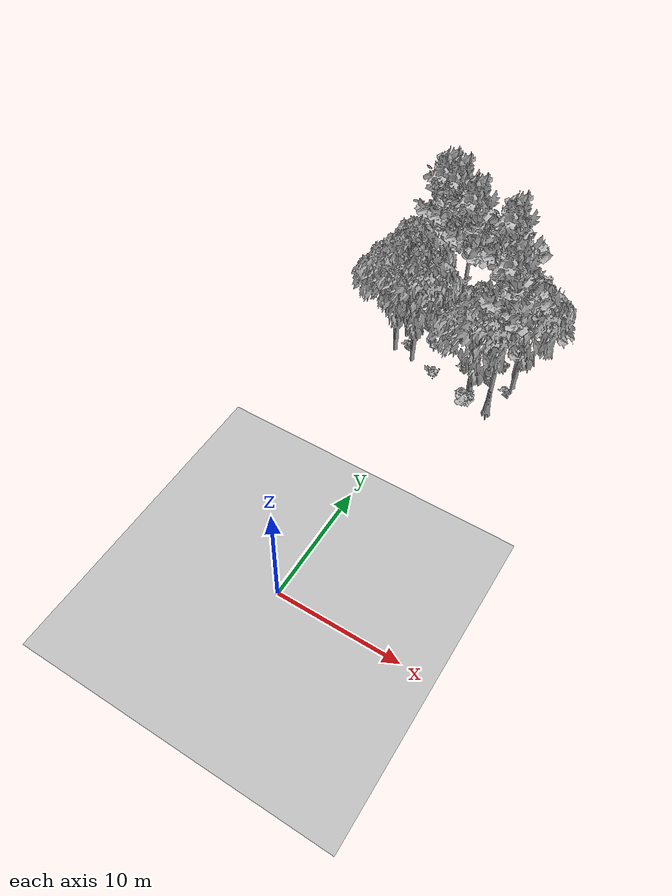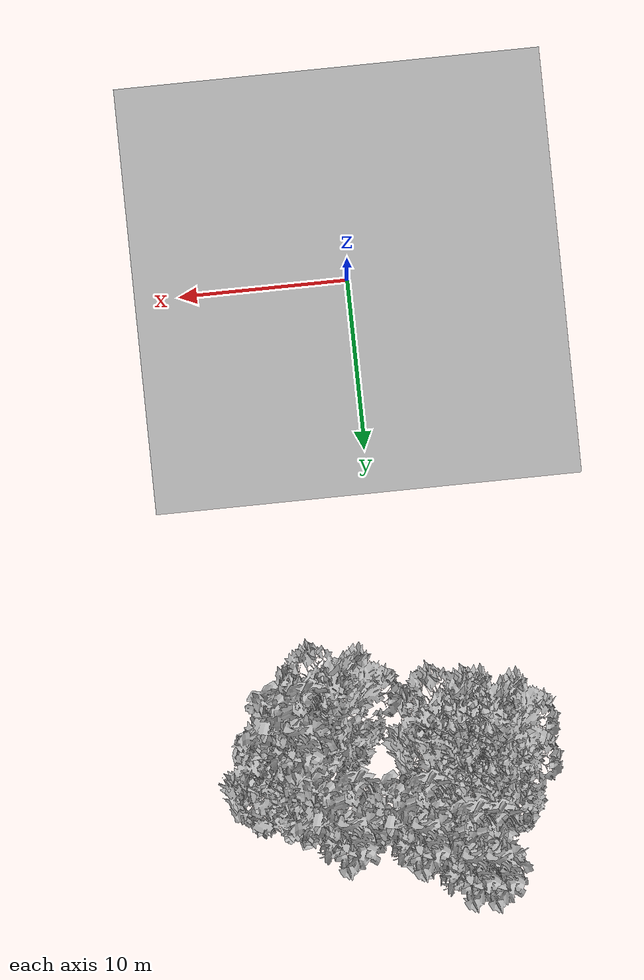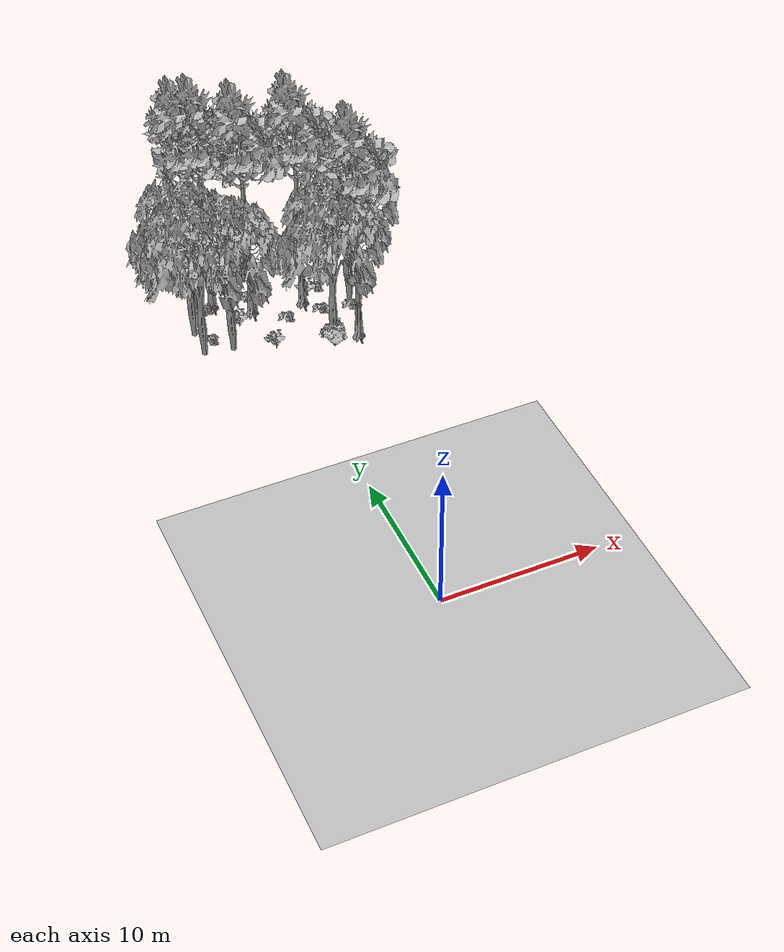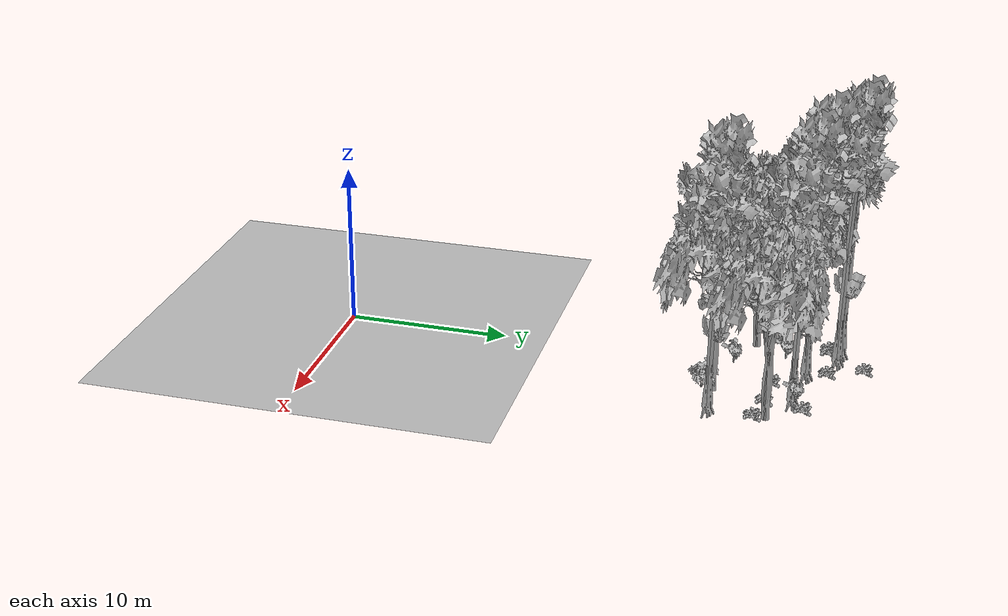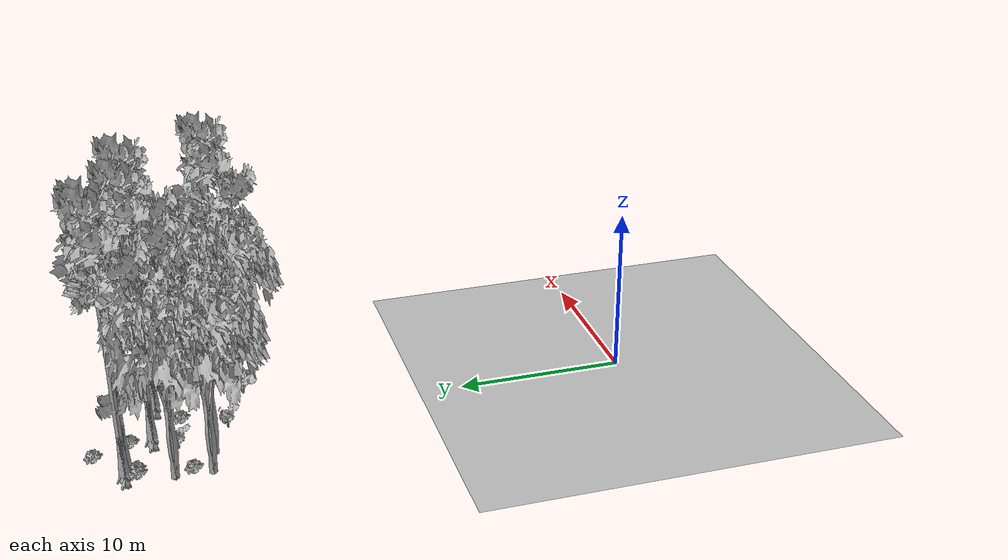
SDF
<sdf version="1.7">
 <world name="default">
  <model name="ground_plane">
   <static>1</static>
   <link name="link">
    <collision name="collision">
     <pose>-50 0 0 0 -0 0</pose>
     <geometry><plane><normal>0 0 1</normal><size>80 80</size></plane></geometry>
     <surface><contact><ode><min_depth>0.01</min_depth><max_vel>0</max_vel></ode></contact></surface>
    </collision>
    <visual name="grass">
     <cast_shadows>0</cast_shadows>
     <geometry>
      <mesh>
       <scale>0.46714285714285714 0.46714285714285714 0.1</scale>
       <uri>file://grass_plane/meshes/grass_plane.dae</uri>
      </mesh>
     </geometry>
    </visual>
   </link>
  </model>
  <model name="Tree 57">
   <static>1</static>
   <pose>-4.908100950834054 25.46079743797337 0 1.57079 -0 0</pose>
   <link name="link">
    <collision name="collision">
     <geometry><mesh><scale>3.5 5 3.5</scale><uri>model://tree_2/meshes/tree_2.obj</uri></mesh></geometry>
    </collision>
    <visual name="visual">
     <geometry><mesh><scale>3.5 5 3.5</scale><uri>model://tree_2/meshes/tree_2.obj</uri></mesh></geometry>
    </visual>
   </link>
  </model>
  <model name="Tree 92">
   <static>1</static>
   <pose>-0.4430177543465845 28.405662768019283 0 1.57079 -0 0</pose>
   <link name="link">
    <collision name="collision">
     <geometry><mesh><scale>3.5 5 3.5</scale><uri>model://tree_9/meshes/tree_9.obj</uri></mesh></geometry>
    </collision>
    <visual name="visual">
     <geometry><mesh><scale>3.5 5 3.5</scale><uri>model://tree_9/meshes/tree_9.obj</uri></mesh></geometry>
    </visual>
   </link>
  </model>
  <model name="Tree 145">
   <static>1</static>
   <pose>5.7937834110559905 26.746695775694064 0 1.57079 -0 0</pose>
   <link name="link">
    <collision name="collision">
     <geometry><mesh><scale>3.5 5 3.5</scale><uri>model://tree_2/meshes/tree_2.obj</uri></mesh></geometry>
    </collision>
    <visual name="visual">
     <geometry><mesh><scale>3.5 5 3.5</scale><uri>model://tree_2/meshes/tree_2.obj</uri></mesh></geometry>
    </visual>
   </link>
  </model>
  <model name="Tree 176">
   <static>1</static>
   <pose>-4.86404579534689 27.507435658707465 0 1.57079 -0 0</pose>
   <link name="link">
    <collision name="collision">
     <geometry><mesh><scale>3.5 5 3.5</scale><uri>model://tree_2/meshes/tree_2.obj</uri></mesh></geometry>
    </collision>
    <visual name="visual">
     <geometry><mesh><scale>3.5 5 3.5</scale><uri>model://tree_2/meshes/tree_2.obj</uri></mesh></geometry>
    </visual>
   </link>
  </model>
  <model name="Tree 186">
   <static>1</static>
   <pose>5.08888139584932 23.369019391815584 0 1.57079 -0 0</pose>
   <link name="link">
    <collision name="collision">
     <geometry><mesh><scale>3.5 5 3.5</scale><uri>model://tree_9/meshes/tree_9.obj</uri></mesh></geometry>
    </collision>
    <visual name="visual">
     <geometry><mesh><scale>3.5 5 3.5</scale><uri>model://tree_9/meshes/tree_9.obj</uri></mesh></geometry>
    </visual>
   </link>
  </model>
  <model name="Tree 317">
   <static>1</static>
   <pose>-2.6479319636963936 30.040150583746325 0 1.57079 -0 0</pose>
   <link name="link">
    <collision name="collision">
     <geometry><mesh><scale>3.5 5 3.5</scale><uri>model://tree_9/meshes/tree_9.obj</uri></mesh></geometry>
    </collision>
    <visual name="visual">
     <geometry><mesh><scale>3.5 5 3.5</scale><uri>model://tree_9/meshes/tree_9.obj</uri></mesh></geometry>
    </visual>
   </link>
  </model>
  <model name="Tree 341">
   <static>1</static>
   <pose>-3.736876223873864 30.19248484098412 0 1.57079 -0 0</pose>
   <link name="link">
    <collision name="collision">
     <geometry><mesh><scale>3.5 5 3.5</scale><uri>model://tree_9/meshes/tree_9.obj</uri></mesh></geometry>
    </collision>
    <visual name="visual">
     <geometry><mesh><scale>3.5 5 3.5</scale><uri>model://tree_9/meshes/tree_9.obj</uri></mesh></geometry>
    </visual>
   </link>
  </model>
  <model name="Tree 423">
   <static>1</static>
   <pose>2.992060708075357 27.966542448006024 0 1.57079 -0 0</pose>
   <link name="link">
    <collision name="collision">
     <geometry><mesh><scale>3.5 5 3.5</scale><uri>model://tree_9/meshes/tree_9.obj</uri></mesh></geometry>
    </collision>
    <visual name="visual">
     <geometry><mesh><scale>3.5 5 3.5</scale><uri>model://tree_9/meshes/tree_9.obj</uri></mesh></geometry>
    </visual>
   </link>
  </model>
  <model name="Tree 562">
   <static>1</static>
   <pose>-3.0476662446718876 25.131887690871366 0 1.57079 -0 0</pose>
   <link name="link">
    <collision name="collision">
     <geometry><mesh><scale>3.5 5 3.5</scale><uri>model://tree_2/meshes/tree_2.obj</uri></mesh></geometry>
    </collision>
    <visual name="visual">
     <geometry><mesh><scale>3.5 5 3.5</scale><uri>model://tree_2/meshes/tree_2.obj</uri></mesh></geometry>
    </visual>
   </link>
  </model>
  <model name="Tree 575">
   <static>1</static>
   <pose>3.2455177439090406 23.339802989098587 0 1.57079 -0 0</pose>
   <link name="link">
    <collision name="collision">
     <geometry><mesh><scale>3.5 5 3.5</scale><uri>model://tree_2/meshes/tree_2.obj</uri></mesh></geometry>
    </collision>
    <visual name="visual">
     <geometry><mesh><scale>3.5 5 3.5</scale><uri>model://tree_2/meshes/tree_2.obj</uri></mesh></geometry>
    </visual>
   </link>
  </model>
  <model name="Bush 124">
   <static>1</static>
   <pose>1.2823105183704584 26.571873525794928 0 1.57079 -0 0</pose>
   <link name="link">
    <collision name="collision">
     <geometry><mesh><scale>2 2 2</scale><uri>model://bush_2/meshes/bush_2.obj</uri></mesh></geometry>
     <surface><contact><collide_without_contact>false</collide_without_contact></contact></surface>
    </collision>
    <visual name="visual">
     <geometry><mesh><scale>2 2 2</scale><uri>model://bush_2/meshes/bush_2.obj</uri></mesh></geometry>
    </visual>
   </link>
  </model>
  <model name="Bush 128">
   <static>1</static>
   <pose>3.654021927108147 26.43761721664957 0 1.57079 -0 0</pose>
   <link name="link">
    <collision name="collision">
     <geometry><mesh><scale>2 2 2</scale><uri>model://bush_2/meshes/bush_2.obj</uri></mesh></geometry>
     <surface><contact><collide_without_contact>false</collide_without_contact></contact></surface>
    </collision>
    <visual name="visual">
     <geometry><mesh><scale>2 2 2</scale><uri>model://bush_2/meshes/bush_2.obj</uri></mesh></geometry>
    </visual>
   </link>
  </model>
  <model name="Bush 131">
   <static>1</static>
   <pose>4.165887860676904 28.685420192674215 0 1.57079 -0 0</pose>
   <link name="link">
    <collision name="collision">
     <geometry><mesh><scale>2 2 2</scale><uri>model://bush_2/meshes/bush_2.obj</uri></mesh></geometry>
     <surface><contact><collide_without_contact>false</collide_without_contact></contact></surface>
    </collision>
    <visual name="visual">
     <geometry><mesh><scale>2 2 2</scale><uri>model://bush_2/meshes/bush_2.obj</uri></mesh></geometry>
    </visual>
   </link>
  </model>
  <model name="Bush 141">
   <static>1</static>
   <pose>-0.4040906236204549 24.10848921184305 0 1.57079 -0 0</pose>
   <link name="link">
    <collision name="collision">
     <geometry><mesh><scale>2 2 2</scale><uri>model://bush_0/meshes/bush_0.obj</uri></mesh></geometry>
     <surface><contact><collide_without_contact>false</collide_without_contact></contact></surface>
    </collision>
    <visual name="visual">
     <geometry><mesh><scale>2 2 2</scale><uri>model://bush_0/meshes/bush_0.obj</uri></mesh></geometry>
    </visual>
   </link>
  </model>
  <model name="Bush 204">
   <static>1</static>
   <pose>-1.8155742516353754 27.067687083146907 0 1.57079 -0 0</pose>
   <link name="link">
    <collision name="collision">
     <geometry><mesh><scale>2 2 2</scale><uri>model://bush_0/meshes/bush_0.obj</uri></mesh></geometry>
     <surface><contact><collide_without_contact>false</collide_without_contact></contact></surface>
    </collision>
    <visual name="visual">
     <geometry><mesh><scale>2 2 2</scale><uri>model://bush_0/meshes/bush_0.obj</uri></mesh></geometry>
    </visual>
   </link>
  </model>
  <model name="Bush 205">
   <static>1</static>
   <pose>-4.086200617863113 26.44328012496291 0 1.57079 -0 0</pose>
   <link name="link">
    <collision name="collision">
     <geometry><mesh><scale>2 2 2</scale><uri>model://bush_2/meshes/bush_2.obj</uri></mesh></geometry>
     <surface><contact><collide_without_contact>false</collide_without_contact></contact></surface>
    </collision>
    <visual name="visual">
     <geometry><mesh><scale>2 2 2</scale><uri>model://bush_2/meshes/bush_2.obj</uri></mesh></geometry>
    </visual>
   </link>
  </model>
  <model name="Bush 222">
   <static>1</static>
   <pose>-3.3440389191348956 29.483262971144867 0 1.57079 -0 0</pose>
   <link name="link">
    <collision name="collision">
     <geometry><mesh><scale>2 2 2</scale><uri>model://bush_2/meshes/bush_2.obj</uri></mesh></geometry>
     <surface><contact><collide_without_contact>false</collide_without_contact></contact></surface>
    </collision>
    <visual name="visual">
     <geometry><mesh><scale>2 2 2</scale><uri>model://bush_2/meshes/bush_2.obj</uri></mesh></geometry>
    </visual>
   </link>
  </model>
  <model name="Bush 270">
   <static>1</static>
   <pose>3.4141684214483377 28.185600558983623 0 1.57079 -0 0</pose>
   <link name="link">
    <collision name="collision">
     <geometry><mesh><scale>2 2 2</scale><uri>model://bush_0/meshes/bush_0.obj</uri></mesh></geometry>
     <surface><contact><collide_without_contact>false</collide_without_contact></contact></surface>
    </collision>
    <visual name="visual">
     <geometry><mesh><scale>2 2 2</scale><uri>model://bush_0/meshes/bush_0.obj</uri></mesh></geometry>
    </visual>
   </link>
  </model>
  <model name="Bush 383">
   <static>1</static>
   <pose>3.127169665730669 22.708985592057537 0 1.57079 -0 0</pose>
   <link name="link">
    <collision name="collision">
     <geometry><mesh><scale>2 2 2</scale><uri>model://bush_1/meshes/bush_1.obj</uri></mesh></geometry>
     <surface><contact><collide_without_contact>false</collide_without_contact></contact></surface>
    </collision>
    <visual name="visual">
     <geometry><mesh><scale>2 2 2</scale><uri>model://bush_1/meshes/bush_1.obj</uri></mesh></geometry>
    </visual>
   </link>
  </model>
  <model name="Bush 415">
   <static>1</static>
   <pose>-3.774915587186854 29.46549151782351 0 1.57079 -0 0</pose>
   <link name="link">
    <collision name="collision">
     <geometry><mesh><scale>2 2 2</scale><uri>model://bush_2/meshes/bush_2.obj</uri></mesh></geometry>
     <surface><contact><collide_without_contact>false</collide_without_contact></contact></surface>
    </collision>
    <visual name="visual">
     <geometry><mesh><scale>2 2 2</scale><uri>model://bush_2/meshes/bush_2.obj</uri></mesh></geometry>
    </visual>
   </link>
  </model>
  <model name="Bush 491">
   <static>1</static>
   <pose>5.586099609113674 26.013303826427347 0 1.57079 -0 0</pose>
   <link name="link">
    <collision name="collision">
     <geometry><mesh><scale>2 2 2</scale><uri>model://bush_2/meshes/bush_2.obj</uri></mesh></geometry>
     <surface><contact><collide_without_contact>false</collide_without_contact></contact></surface>
    </collision>
    <visual name="visual">
     <geometry><mesh><scale>2 2 2</scale><uri>model://bush_2/meshes/bush_2.obj</uri></mesh></geometry>
    </visual>
   </link>
  </model>
  <model name="Bush 516">
   <static>1</static>
   <pose>-0.5372062304645908 29.63420712227358 0 1.57079 -0 0</pose>
   <link name="link">
    <collision name="collision">
     <geometry><mesh><scale>2 2 2</scale><uri>model://bush_2/meshes/bush_2.obj</uri></mesh></geometry>
     <surface><contact><collide_without_contact>false</collide_without_contact></contact></surface>
    </collision>
    <visual name="visual">
     <geometry><mesh><scale>2 2 2</scale><uri>model://bush_2/meshes/bush_2.obj</uri></mesh></geometry>
    </visual>
   </link>
  </model>
  <model name="Bush 557">
   <static>1</static>
   <pose>-1.4698993678141221 31.725322118114505 0 1.57079 -0 0</pose>
   <link name="link">
    <collision name="collision">
     <geometry><mesh><scale>2 2 2</scale><uri>model://bush_2/meshes/bush_2.obj</uri></mesh></geometry>
     <surface><contact><collide_without_contact>false</collide_without_contact></contact></surface>
    </collision>
    <visual name="visual">
     <geometry><mesh><scale>2 2 2</scale><uri>model://bush_2/meshes/bush_2.obj</uri></mesh></geometry>
    </visual>
   </link>
  </model>
 </world>
</sdf>
